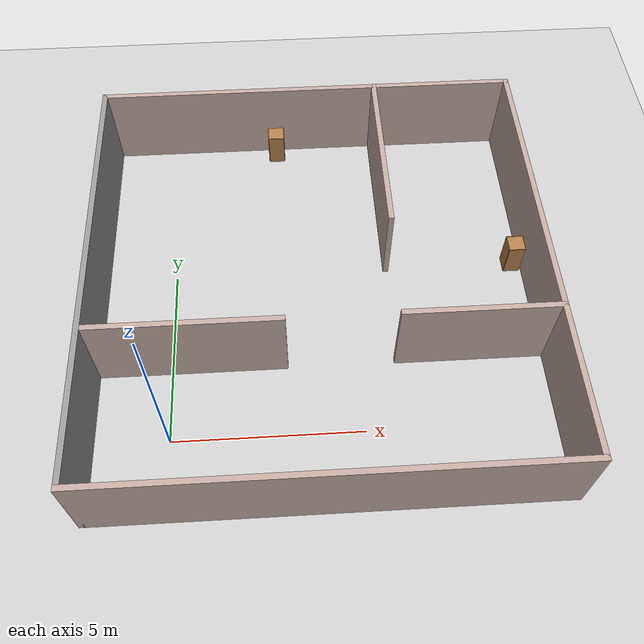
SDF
<sdf version="1.6">
 <world name="default">
  <light name="sun" type="directional">
   <pose>0 0 10 0 -0 0</pose>
   <diffuse>0.8 0.8 0.8 1</diffuse>
   <specular>0.2 0.2 0.2 1</specular>
   <attenuation>
    <range>1000</range>
    <constant>0.9</constant>
    <linear>0.01</linear>
    <quadratic>0.001</quadratic>
   </attenuation>
   <direction>-0.5 0.1 -0.9</direction>
  </light>
  <model name="ground_plane">
   <static>1</static>
   <link name="link">
    <collision name="collision">
     <geometry><plane><normal>0 0 1</normal><size>100 100</size></plane></geometry>
     <surface>
      <contact><collide_bitmask>65535</collide_bitmask></contact>
      <friction><ode><mu>100</mu><mu2>50</mu2></ode></friction>
     </surface>
    </collision>
    <visual name="visual">
     <cast_shadows>0</cast_shadows>
     <geometry><plane><normal>0 0 1</normal><size>100 100</size></plane></geometry>
     <material>
      <script><uri>file://media/materials/scripts/gazebo.material</uri><name>Gazebo/Grey</name></script>
     </material>
    </visual>
   </link>
  </model>
  <gravity>0 0 -9.8</gravity>
  <magnetic_field>6e-06 2.3e-05 -4.2e-05</magnetic_field>
  <atmosphere type="adiabatic"/>
  <physics name="default_physics" default="0" type="ode">
   <max_step_size>0.001</max_step_size>
   <real_time_factor>1</real_time_factor>
   <real_time_update_rate>1000</real_time_update_rate>
  </physics>
  <scene><ambient>0.4 0.4 0.4 1</ambient><background>0.7 0.7 0.7 1</background><shadows>1</shadows></scene>
  <audio><device>default</device></audio>
  <spherical_coordinates>
   <surface_model>EARTH_WGS84</surface_model>
   <latitude_deg>0</latitude_deg>
   <longitude_deg>0</longitude_deg>
   <elevation>0</elevation>
   <heading_deg>0</heading_deg>
  </spherical_coordinates>
  <model name="virtual_room">
   <pose>4 4 0 0 -0 0</pose>
   <link name="Wall_0">
    <collision name="Wall_0_Collision">
     <geometry><box><size>12.15 0.15 2.5</size></box></geometry>
     <pose>0 0 1.25 0 -0 0</pose>
    </collision>
    <visual name="Wall_0_Visual">
     <pose>0 0 1.25 0 -0 0</pose>
     <geometry><box><size>12.15 0.15 2.5</size></box></geometry>
     <material>
      <script><uri>file://media/materials/scripts/gazebo.material</uri><name>Gazebo/Grey</name></script>
      <ambient>0.760784 0.662745 0.627451 1</ambient>
     </material>
     <meta><layer>0</layer></meta>
    </visual>
    <pose>0 -6 0 0 -0 0</pose>
   </link>
   <link name="Wall_1">
    <collision name="Wall_1_Collision">
     <geometry><box><size>12.15 0.15 2.5</size></box></geometry>
     <pose>0 0 1.25 0 -0 0</pose>
    </collision>
    <visual name="Wall_1_Visual">
     <pose>0 0 1.25 0 -0 0</pose>
     <geometry><box><size>12.15 0.15 2.5</size></box></geometry>
     <material>
      <script><uri>file://media/materials/scripts/gazebo.material</uri><name>Gazebo/Grey</name></script>
      <ambient>0.760784 0.662745 0.627451 1</ambient>
     </material>
     <meta><layer>0</layer></meta>
    </visual>
    <pose>6 0 0 0 -0 1.5708</pose>
   </link>
   <link name="Wall_10">
    <collision name="Wall_10_Collision">
     <geometry><box><size>4.15 0.15 2.5</size></box></geometry>
     <pose>0 0 1.25 0 -0 0</pose>
    </collision>
    <visual name="Wall_10_Visual">
     <pose>0 0 1.25 0 -0 0</pose>
     <geometry><box><size>4.15 0.15 2.5</size></box></geometry>
     <material>
      <script><uri>file://media/materials/scripts/gazebo.material</uri><name>Gazebo/Grey</name></script>
      <ambient>0.760784 0.662745 0.627451 1</ambient>
     </material>
     <meta><layer>0</layer></meta>
    </visual>
    <pose>4 -2 0 0 -0 0</pose>
   </link>
   <link name="Wall_2">
    <collision name="Wall_2_Collision">
     <geometry><box><size>12.15 0.15 2.5</size></box></geometry>
     <pose>0 0 1.25 0 -0 0</pose>
    </collision>
    <visual name="Wall_2_Visual">
     <pose>0 0 1.25 0 -0 0</pose>
     <geometry><box><size>12.15 0.15 2.5</size></box></geometry>
     <material>
      <script><uri>file://media/materials/scripts/gazebo.material</uri><name>Gazebo/Grey</name></script>
      <ambient>0.760784 0.662745 0.627451 1</ambient>
     </material>
     <meta><layer>0</layer></meta>
    </visual>
    <pose>0 6 0 0 -0 3.14159</pose>
   </link>
   <link name="Wall_3">
    <collision name="Wall_3_Collision">
     <geometry><box><size>12.15 0.15 2.5</size></box></geometry>
     <pose>0 0 1.25 0 -0 0</pose>
    </collision>
    <visual name="Wall_3_Visual">
     <pose>0 0 1.25 0 -0 0</pose>
     <geometry><box><size>12.15 0.15 2.5</size></box></geometry>
     <material>
      <script><uri>file://media/materials/scripts/gazebo.material</uri><name>Gazebo/Grey</name></script>
      <ambient>1 1 1 1</ambient>
     </material>
     <meta><layer>0</layer></meta>
    </visual>
    <pose>-6 0 0 0 -0 -1.5708</pose>
   </link>
   <link name="Wall_6">
    <collision name="Wall_6_Collision">
     <geometry><box><size>5.15 0.15 2.5</size></box></geometry>
     <pose>0 0 1.25 0 -0 0</pose>
    </collision>
    <visual name="Wall_6_Visual">
     <pose>0 0 1.25 0 -0 0</pose>
     <geometry><box><size>5.15 0.15 2.5</size></box></geometry>
     <material>
      <script><uri>file://media/materials/scripts/gazebo.material</uri><name>Gazebo/Grey</name></script>
      <ambient>0.760784 0.662745 0.627451 1</ambient>
     </material>
     <meta><layer>0</layer></meta>
    </visual>
    <pose>2 3.5 0 0 -0 -1.5708</pose>
   </link>
   <link name="Wall_8">
    <collision name="Wall_8_Collision">
     <geometry><box><size>5.15 0.15 2.5</size></box></geometry>
     <pose>0 0 1.25 0 -0 0</pose>
    </collision>
    <visual name="Wall_8_Visual">
     <pose>0 0 1.25 0 -0 0</pose>
     <geometry><box><size>5.15 0.15 2.5</size></box></geometry>
     <material>
      <script><uri>file://media/materials/scripts/gazebo.material</uri><name>Gazebo/Grey</name></script>
      <ambient>0.760784 0.662745 0.627451 1</ambient>
     </material>
     <meta><layer>0</layer></meta>
    </visual>
    <pose>-3.5 -2 0 0 -0 0</pose>
   </link>
   <static>1</static>
  </model>
  <model name="cabinet">
   <static>1</static>
   <link name="cabinet_bottom_plate">
    <inertial>
     <pose>0 0 -1 0 -0 0</pose>
     <inertia><ixx>2.05</ixx><ixy>0</ixy><ixz>0</ixz><iyy>2.05</iyy><iyz>0</iyz><izz>2.05</izz></inertia>
     <mass>25</mass>
    </inertial>
    <collision name="cabinet_bottom_plate_geom">
     <pose>0 0 0.01 0 -0 0</pose>
     <geometry><box><size>0.45 0.45 0.02</size></box></geometry>
    </collision>
    <visual name="cabinet_bottom_plate_geom_visual">
     <pose>0 0 0.01 0 -0 0</pose>
     <geometry><box><size>0.45 0.45 0.02</size></box></geometry>
     <material>
      <script><uri>file://media/materials/scripts/gazebo.material</uri><name>Gazebo/Wood</name></script>
     </material>
    </visual>
    <collision name="cabinet_bottom_plate_geom_cabinet_back_plate">
     <pose>0.235 0 0.51 0 -0 0</pose>
     <geometry><box><size>0.02 0.45 1.02</size></box></geometry>
    </collision>
    <visual name="cabinet_bottom_plate_geom_cabinet_back_plate_visual">
     <pose>0.235 0 0.51 0 -0 0</pose>
     <geometry><box><size>0.02 0.45 1.02</size></box></geometry>
     <material>
      <script><uri>file://media/materials/scripts/gazebo.material</uri><name>Gazebo/Wood</name></script>
     </material>
    </visual>
    <collision name="cabinet_bottom_plate_geom_cabinet_left_plate">
     <pose>0 0.235 0.51 0 -0 0</pose>
     <geometry><box><size>0.45 0.02 1.02</size></box></geometry>
    </collision>
    <visual name="cabinet_bottom_plate_geom_cabinet_left_plate_visual">
     <pose>0 0.235 0.51 0 -0 0</pose>
     <geometry><box><size>0.45 0.02 1.02</size></box></geometry>
     <material>
      <script><uri>file://media/materials/scripts/gazebo.material</uri><name>Gazebo/Wood</name></script>
     </material>
    </visual>
    <collision name="cabinet_bottom_plate_geom_cabinet_middle_plate">
     <pose>0 0 0.51 0 -0 0</pose>
     <geometry><box><size>0.45 0.45 0.02</size></box></geometry>
    </collision>
    <visual name="cabinet_bottom_plate_geom_cabinet_middle_plate_visual">
     <pose>0 0 0.51 0 -0 0</pose>
     <geometry><box><size>0.45 0.45 0.02</size></box></geometry>
     <material>
      <script><uri>file://media/materials/scripts/gazebo.material</uri><name>Gazebo/Wood</name></script>
     </material>
    </visual>
    <collision name="cabinet_bottom_plate_geom_cabinet_right_plate">
     <pose>0 -0.235 0.51 0 -0 0</pose>
     <geometry><box><size>0.45 0.02 1.02</size></box></geometry>
    </collision>
    <visual name="cabinet_bottom_plate_geom_cabinet_right_plate_visual">
     <pose>0 -0.235 0.51 0 -0 0</pose>
     <geometry><box><size>0.45 0.02 1.02</size></box></geometry>
     <material>
      <script><uri>file://media/materials/scripts/gazebo.material</uri><name>Gazebo/Wood</name></script>
     </material>
    </visual>
    <collision name="cabinet_bottom_plate_geom_cabinet_top_plate">
     <pose>0 0 1.01 0 -0 0</pose>
     <geometry><box><size>0.45 0.45 0.02</size></box></geometry>
    </collision>
    <visual name="cabinet_bottom_plate_geom_cabinet_top_plate_visual">
     <pose>0 0 1.01 0 -0 0</pose>
     <geometry><box><size>0.45 0.45 0.02</size></box></geometry>
     <material>
      <script><uri>file://media/materials/scripts/gazebo.material</uri><name>Gazebo/Wood</name></script>
     </material>
    </visual>
   </link>
   <pose>3 9.65 0 0 0 -1.571</pose>
  </model>
  <model name="cabinet_0">
   <static>1</static>
   <link name="cabinet_bottom_plate">
    <inertial>
     <pose>0 0 -1 0 -0 0</pose>
     <inertia><ixx>2.05</ixx><ixy>0</ixy><ixz>0</ixz><iyy>2.05</iyy><iyz>0</iyz><izz>2.05</izz></inertia>
     <mass>25</mass>
    </inertial>
    <collision name="cabinet_bottom_plate_geom">
     <pose>0 0 0.01 0 -0 0</pose>
     <geometry><box><size>0.45 0.45 0.02</size></box></geometry>
    </collision>
    <visual name="cabinet_bottom_plate_geom_visual">
     <pose>0 0 0.01 0 -0 0</pose>
     <geometry><box><size>0.45 0.45 0.02</size></box></geometry>
     <material>
      <script><uri>file://media/materials/scripts/gazebo.material</uri><name>Gazebo/Wood</name></script>
     </material>
    </visual>
    <collision name="cabinet_bottom_plate_geom_cabinet_back_plate">
     <pose>0.235 0 0.51 0 -0 0</pose>
     <geometry><box><size>0.02 0.45 1.02</size></box></geometry>
    </collision>
    <visual name="cabinet_bottom_plate_geom_cabinet_back_plate_visual">
     <pose>0.235 0 0.51 0 -0 0</pose>
     <geometry><box><size>0.02 0.45 1.02</size></box></geometry>
     <material>
      <script><uri>file://media/materials/scripts/gazebo.material</uri><name>Gazebo/Wood</name></script>
     </material>
    </visual>
    <collision name="cabinet_bottom_plate_geom_cabinet_left_plate">
     <pose>0 0.235 0.51 0 -0 0</pose>
     <geometry><box><size>0.45 0.02 1.02</size></box></geometry>
    </collision>
    <visual name="cabinet_bottom_plate_geom_cabinet_left_plate_visual">
     <pose>0 0.235 0.51 0 -0 0</pose>
     <geometry><box><size>0.45 0.02 1.02</size></box></geometry>
     <material>
      <script><uri>file://media/materials/scripts/gazebo.material</uri><name>Gazebo/Wood</name></script>
     </material>
    </visual>
    <collision name="cabinet_bottom_plate_geom_cabinet_middle_plate">
     <pose>0 0 0.51 0 -0 0</pose>
     <geometry><box><size>0.45 0.45 0.02</size></box></geometry>
    </collision>
    <visual name="cabinet_bottom_plate_geom_cabinet_middle_plate_visual">
     <pose>0 0 0.51 0 -0 0</pose>
     <geometry><box><size>0.45 0.45 0.02</size></box></geometry>
     <material>
      <script><uri>file://media/materials/scripts/gazebo.material</uri><name>Gazebo/Wood</name></script>
     </material>
    </visual>
    <collision name="cabinet_bottom_plate_geom_cabinet_right_plate">
     <pose>0 -0.235 0.51 0 -0 0</pose>
     <geometry><box><size>0.45 0.02 1.02</size></box></geometry>
    </collision>
    <visual name="cabinet_bottom_plate_geom_cabinet_right_plate_visual">
     <pose>0 -0.235 0.51 0 -0 0</pose>
     <geometry><box><size>0.45 0.02 1.02</size></box></geometry>
     <material>
      <script><uri>file://media/materials/scripts/gazebo.material</uri><name>Gazebo/Wood</name></script>
     </material>
    </visual>
    <collision name="cabinet_bottom_plate_geom_cabinet_top_plate">
     <pose>0 0 1.01 0 -0 0</pose>
     <geometry><box><size>0.45 0.45 0.02</size></box></geometry>
    </collision>
    <visual name="cabinet_bottom_plate_geom_cabinet_top_plate_visual">
     <pose>0 0 1.01 0 -0 0</pose>
     <geometry><box><size>0.45 0.45 0.02</size></box></geometry>
     <material>
      <script><uri>file://media/materials/scripts/gazebo.material</uri><name>Gazebo/Wood</name></script>
     </material>
    </visual>
   </link>
   <pose>7 -1.65 0 0 -0 1.571</pose>
  </model>
  <model name="cabinet_1">
   <static>1</static>
   <link name="cabinet_bottom_plate">
    <inertial>
     <pose>0 0 -1 0 -0 0</pose>
     <inertia><ixx>2.05</ixx><ixy>0</ixy><ixz>0</ixz><iyy>2.05</iyy><iyz>0</iyz><izz>2.05</izz></inertia>
     <mass>25</mass>
    </inertial>
    <collision name="cabinet_bottom_plate_geom">
     <pose>0 0 0.01 0 -0 0</pose>
     <geometry><box><size>0.45 0.45 0.02</size></box></geometry>
    </collision>
    <visual name="cabinet_bottom_plate_geom_visual">
     <pose>0 0 0.01 0 -0 0</pose>
     <geometry><box><size>0.45 0.45 0.02</size></box></geometry>
     <material>
      <script><uri>file://media/materials/scripts/gazebo.material</uri><name>Gazebo/Wood</name></script>
     </material>
    </visual>
    <collision name="cabinet_bottom_plate_geom_cabinet_back_plate">
     <pose>0.235 0 0.51 0 -0 0</pose>
     <geometry><box><size>0.02 0.45 1.02</size></box></geometry>
    </collision>
    <visual name="cabinet_bottom_plate_geom_cabinet_back_plate_visual">
     <pose>0.235 0 0.51 0 -0 0</pose>
     <geometry><box><size>0.02 0.45 1.02</size></box></geometry>
     <material>
      <script><uri>file://media/materials/scripts/gazebo.material</uri><name>Gazebo/Wood</name></script>
     </material>
    </visual>
    <collision name="cabinet_bottom_plate_geom_cabinet_left_plate">
     <pose>0 0.235 0.51 0 -0 0</pose>
     <geometry><box><size>0.45 0.02 1.02</size></box></geometry>
    </collision>
    <visual name="cabinet_bottom_plate_geom_cabinet_left_plate_visual">
     <pose>0 0.235 0.51 0 -0 0</pose>
     <geometry><box><size>0.45 0.02 1.02</size></box></geometry>
     <material>
      <script><uri>file://media/materials/scripts/gazebo.material</uri><name>Gazebo/Wood</name></script>
     </material>
    </visual>
    <collision name="cabinet_bottom_plate_geom_cabinet_middle_plate">
     <pose>0 0 0.51 0 -0 0</pose>
     <geometry><box><size>0.45 0.45 0.02</size></box></geometry>
    </collision>
    <visual name="cabinet_bottom_plate_geom_cabinet_middle_plate_visual">
     <pose>0 0 0.51 0 -0 0</pose>
     <geometry><box><size>0.45 0.45 0.02</size></box></geometry>
     <material>
      <script><uri>file://media/materials/scripts/gazebo.material</uri><name>Gazebo/Wood</name></script>
     </material>
    </visual>
    <collision name="cabinet_bottom_plate_geom_cabinet_right_plate">
     <pose>0 -0.235 0.51 0 -0 0</pose>
     <geometry><box><size>0.45 0.02 1.02</size></box></geometry>
    </collision>
    <visual name="cabinet_bottom_plate_geom_cabinet_right_plate_visual">
     <pose>0 -0.235 0.51 0 -0 0</pose>
     <geometry><box><size>0.45 0.02 1.02</size></box></geometry>
     <material>
      <script><uri>file://media/materials/scripts/gazebo.material</uri><name>Gazebo/Wood</name></script>
     </material>
    </visual>
    <collision name="cabinet_bottom_plate_geom_cabinet_top_plate">
     <pose>0 0 1.01 0 -0 0</pose>
     <geometry><box><size>0.45 0.45 0.02</size></box></geometry>
    </collision>
    <visual name="cabinet_bottom_plate_geom_cabinet_top_plate_visual">
     <pose>0 0 1.01 0 -0 0</pose>
     <geometry><box><size>0.45 0.45 0.02</size></box></geometry>
     <material>
      <script><uri>file://media/materials/scripts/gazebo.material</uri><name>Gazebo/Wood</name></script>
     </material>
    </visual>
   </link>
   <pose>9.65 5 0 0 -0 -3.14119</pose>
  </model>
 </world>
</sdf>
